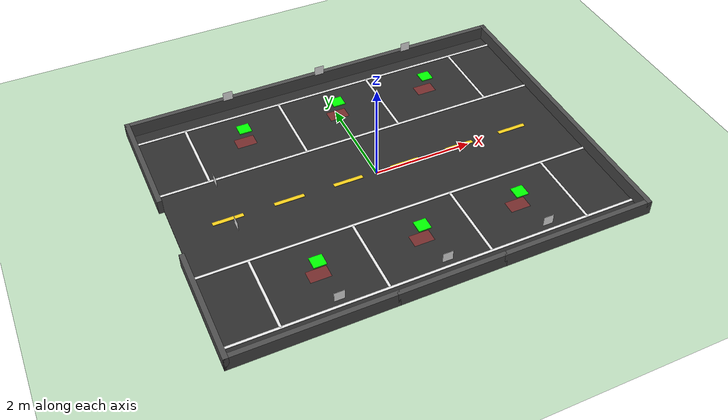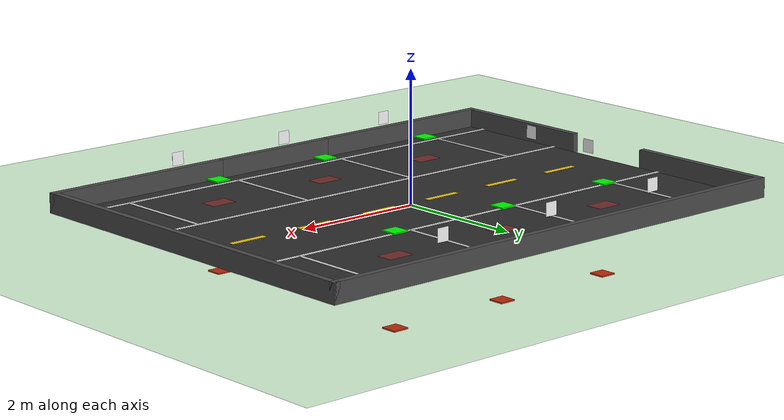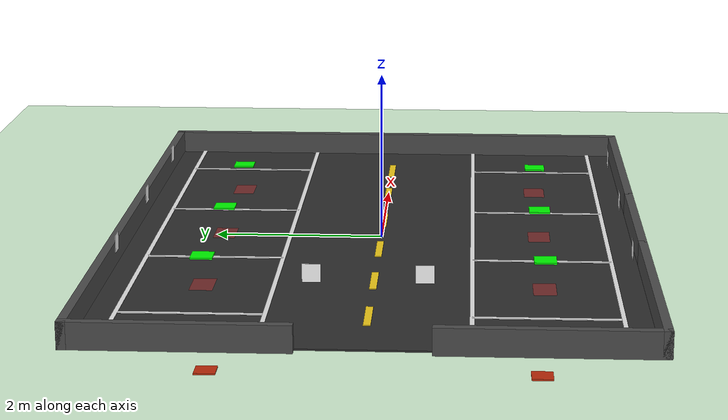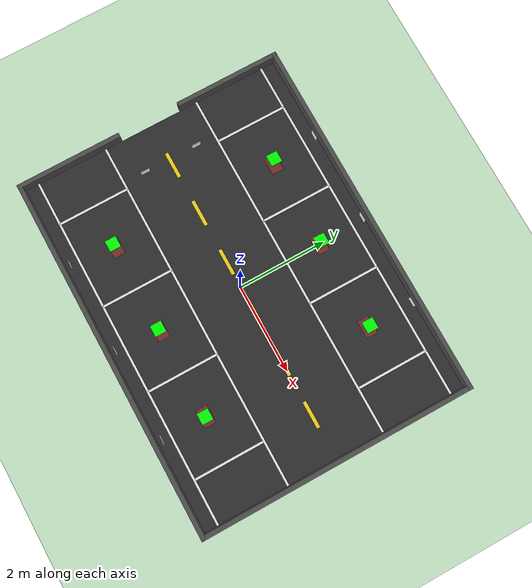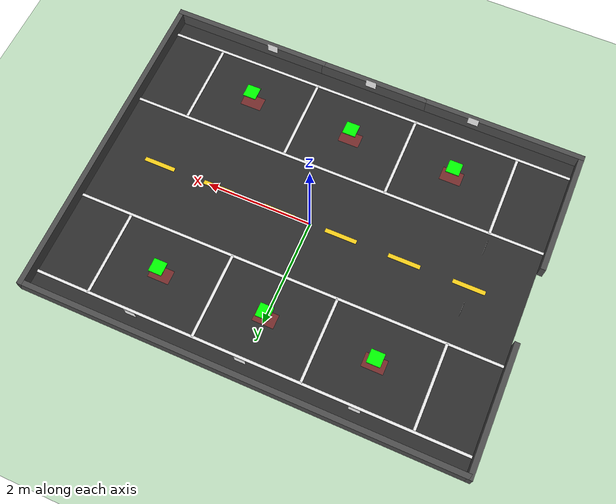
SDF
<sdf version="1.7">
 <world name="limo_parking_lot">
  <gravity>0 0 -9.8</gravity>
  <plugin filename="ignition-gazebo-physics-system" name="gz::sim::systems::Physics"/>
  <plugin filename="ignition-gazebo-user-commands-system" name="gz::sim::systems::UserCommands"/>
  <plugin filename="ignition-gazebo-sensors-system" name="gz::sim::systems::Sensors">
   <render_engine>ogre2</render_engine>
  </plugin>
  <plugin filename="ignition-gazebo-contact-system" name="gz::sim::systems::Contact"/>
  <plugin filename="ignition-gazebo-scene-broadcaster-system" name="gz::sim::systems::SceneBroadcaster"/>
  <scene><ambient>0.2 0.2 0.2 1</ambient><background>0.2 0.25 0.3 1</background><shadows>true</shadows></scene>
  <light name="sun" type="directional">
   <pose>0 0 10 0 0 0</pose>
   <diffuse>0.4 0.4 0.4 1</diffuse>
   <specular>0.1 0.1 0.1 1</specular>
   <direction>-0.5 0.5 -1</direction>
  </light>
  <model name="ground">
   <static>true</static>
   <link name="ground_link">
    <collision name="ground_collision">
     <geometry><plane><normal>0 0 1</normal><size>100 100</size></plane></geometry>
    </collision>
    <visual name="ground_visual">
     <geometry><plane><normal>0 0 1</normal><size>100 100</size></plane></geometry>
     <material><ambient>0.2 0.55 0.2 1</ambient><diffuse>0.2 0.6 0.2 1</diffuse></material>
    </visual>
   </link>
  </model>
  <model name="parking_lot">
   <static>true</static>
   <link name="parking_link">
    <pose>0 0 0.01 0 0 0</pose>
    <visual name="asphalt">
     <geometry><box><size>8.0 6.0 0.02</size></box></geometry>
     <material><ambient>0.15 0.15 0.15 1</ambient><diffuse>0.18 0.18 0.18 1</diffuse></material>
    </visual>
    <collision name="asphalt_collision"><geometry><box><size>8.0 6.0 0.02</size></box></geometry></collision>
    <visual name="line_top_front">
     <pose>0 1.1 0.02 0 0 0</pose>
     <geometry><box><size>8.0 0.05 0.01</size></box></geometry>
     <material><ambient>0.9 0.9 0.9 1</ambient><diffuse>0.9 0.9 0.9 1</diffuse></material>
    </visual>
    <visual name="line_top_back">
     <pose>0 2.7 0.02 0 0 0</pose>
     <geometry><box><size>8.0 0.05 0.01</size></box></geometry>
     <material><ambient>0.9 0.9 0.9 1</ambient><diffuse>0.9 0.9 0.9 1</diffuse></material>
    </visual>
    <visual name="line_bottom_front">
     <pose>0 -1.1 0.02 0 0 0</pose>
     <geometry><box><size>8.0 0.05 0.01</size></box></geometry>
     <material><ambient>0.9 0.9 0.9 1</ambient><diffuse>0.9 0.9 0.9 1</diffuse></material>
    </visual>
    <visual name="line_bottom_back">
     <pose>0 -2.7 0.02 0 0 0</pose>
     <geometry><box><size>8.0 0.05 0.01</size></box></geometry>
     <material><ambient>0.9 0.9 0.9 1</ambient><diffuse>0.9 0.9 0.9 1</diffuse></material>
    </visual>
    <visual name="line_top_1">
     <pose>-3.0 1.9 0.02 0 0 0</pose>
     <geometry><box><size>0.05 1.6 0.01</size></box></geometry>
     <material><ambient>0.9 0.9 0.9 1</ambient><diffuse>0.9 0.9 0.9 1</diffuse></material>
    </visual>
    <visual name="line_top_2">
     <pose>-1.0 1.9 0.02 0 0 0</pose>
     <geometry><box><size>0.05 1.6 0.01</size></box></geometry>
     <material><ambient>0.9 0.9 0.9 1</ambient><diffuse>0.9 0.9 0.9 1</diffuse></material>
    </visual>
    <visual name="line_top_3">
     <pose>1.0 1.9 0.02 0 0 0</pose>
     <geometry><box><size>0.05 1.6 0.01</size></box></geometry>
     <material><ambient>0.9 0.9 0.9 1</ambient><diffuse>0.9 0.9 0.9 1</diffuse></material>
    </visual>
    <visual name="line_top_4">
     <pose>3.0 1.9 0.02 0 0 0</pose>
     <geometry><box><size>0.05 1.6 0.01</size></box></geometry>
     <material><ambient>0.9 0.9 0.9 1</ambient><diffuse>0.9 0.9 0.9 1</diffuse></material>
    </visual>
    <visual name="line_bottom_1">
     <pose>-3.0 -1.9 0.02 0 0 0</pose>
     <geometry><box><size>0.05 1.6 0.01</size></box></geometry>
     <material><ambient>0.9 0.9 0.9 1</ambient><diffuse>0.9 0.9 0.9 1</diffuse></material>
    </visual>
    <visual name="line_bottom_2">
     <pose>-1.0 -1.9 0.02 0 0 0</pose>
     <geometry><box><size>0.05 1.6 0.01</size></box></geometry>
     <material><ambient>0.9 0.9 0.9 1</ambient><diffuse>0.9 0.9 0.9 1</diffuse></material>
    </visual>
    <visual name="line_bottom_3">
     <pose>1.0 -1.9 0.02 0 0 0</pose>
     <geometry><box><size>0.05 1.6 0.01</size></box></geometry>
     <material><ambient>0.9 0.9 0.9 1</ambient><diffuse>0.9 0.9 0.9 1</diffuse></material>
    </visual>
    <visual name="line_bottom_4">
     <pose>3.0 -1.9 0.02 0 0 0</pose>
     <geometry><box><size>0.05 1.6 0.01</size></box></geometry>
     <material><ambient>0.9 0.9 0.9 1</ambient><diffuse>0.9 0.9 0.9 1</diffuse></material>
    </visual>
    <visual name="center_dash_1">
     <pose>-3.0 0.0 0.02 0 0 0</pose>
     <geometry><box><size>0.6 0.08 0.01</size></box></geometry>
     <material><ambient>0.95 0.8 0.1 1</ambient><diffuse>0.95 0.8 0.1 1</diffuse></material>
    </visual>
    <visual name="center_dash_2">
     <pose>-1.8 0.0 0.02 0 0 0</pose>
     <geometry><box><size>0.6 0.08 0.01</size></box></geometry>
     <material><ambient>0.95 0.8 0.1 1</ambient><diffuse>0.95 0.8 0.1 1</diffuse></material>
    </visual>
    <visual name="center_dash_3">
     <pose>-0.6 0.0 0.02 0 0 0</pose>
     <geometry><box><size>0.6 0.08 0.01</size></box></geometry>
     <material><ambient>0.95 0.8 0.1 1</ambient><diffuse>0.95 0.8 0.1 1</diffuse></material>
    </visual>
    <visual name="center_dash_4">
     <pose>0.6 0.0 0.02 0 0 0</pose>
     <geometry><box><size>0.6 0.08 0.01</size></box></geometry>
     <material><ambient>0.95 0.8 0.1 1</ambient><diffuse>0.95 0.8 0.1 1</diffuse></material>
    </visual>
    <visual name="center_dash_5">
     <pose>1.8 0.0 0.02 0 0 0</pose>
     <geometry><box><size>0.6 0.08 0.01</size></box></geometry>
     <material><ambient>0.95 0.8 0.1 1</ambient><diffuse>0.95 0.8 0.1 1</diffuse></material>
    </visual>
    <visual name="center_dash_6">
     <pose>3.0 0.0 0.02 0 0 0</pose>
     <geometry><box><size>0.6 0.08 0.01</size></box></geometry>
     <material><ambient>0.95 0.8 0.1 1</ambient><diffuse>0.95 0.8 0.1 1</diffuse></material>
    </visual>
   </link>
  </model>
  <include>
   <uri>model://spot_indicator_green</uri>
   <name>spot_green_01</name>
   <pose>-2.0 1.9 0.36 0 0 0</pose>
  </include>
  <include>
   <uri>model://spot_indicator_red</uri>
   <name>spot_red_01</name>
   <pose>-2.0 1.9 -1.0 0 0 0</pose>
  </include>
  <include>
   <uri>model://spot_indicator_green</uri>
   <name>spot_green_02</name>
   <pose>0.0 1.9 0.36 0 0 0</pose>
  </include>
  <include>
   <uri>model://spot_indicator_red</uri>
   <name>spot_red_02</name>
   <pose>0.0 1.9 -1.0 0 0 0</pose>
  </include>
  <include>
   <uri>model://spot_indicator_green</uri>
   <name>spot_green_03</name>
   <pose>2.0 1.9 0.36 0 0 0</pose>
  </include>
  <include>
   <uri>model://spot_indicator_red</uri>
   <name>spot_red_03</name>
   <pose>2.0 1.9 -1.0 0 0 0</pose>
  </include>
  <include>
   <uri>model://spot_indicator_green</uri>
   <name>spot_green_04</name>
   <pose>-2.0 -1.9 0.36 0 0 0</pose>
  </include>
  <include>
   <uri>model://spot_indicator_red</uri>
   <name>spot_red_04</name>
   <pose>-2.0 -1.9 -1.0 0 0 0</pose>
  </include>
  <include>
   <uri>model://spot_indicator_green</uri>
   <name>spot_green_05</name>
   <pose>0.0 -1.9 0.36 0 0 0</pose>
  </include>
  <include>
   <uri>model://spot_indicator_red</uri>
   <name>spot_red_05</name>
   <pose>0.0 -1.9 -1.0 0 0 0</pose>
  </include>
  <include>
   <uri>model://spot_indicator_green</uri>
   <name>spot_green_06</name>
   <pose>2.0 -1.9 0.36 0 0 0</pose>
  </include>
  <include>
   <uri>model://spot_indicator_red</uri>
   <name>spot_red_06</name>
   <pose>2.0 -1.9 -1.0 0 0 0</pose>
  </include>
  <model name="parking_walls">
   <static>true</static>
   <link name="walls_link">
    <collision name="wall_top_collision">
     <pose>0 3.05 0.15 0 0 0</pose>
     <geometry><box><size>8.2 0.1 0.3</size></box></geometry>
    </collision>
    <visual name="wall_top_visual">
     <pose>0 3.05 0.15 0 0 0</pose>
     <geometry><box><size>8.2 0.1 0.3</size></box></geometry>
     <material><ambient>0.3 0.3 0.3 1</ambient><diffuse>0.3 0.3 0.3 1</diffuse></material>
    </visual>
    <collision name="wall_left_top_collision">
     <pose>-4.05 1.9 0.15 0 0 0</pose>
     <geometry><box><size>0.1 2.4 0.3</size></box></geometry>
    </collision>
    <visual name="wall_left_top_visual">
     <pose>-4.05 1.9 0.15 0 0 0</pose>
     <geometry><box><size>0.1 2.4 0.3</size></box></geometry>
     <material><ambient>0.3 0.3 0.3 1</ambient><diffuse>0.3 0.3 0.3 1</diffuse></material>
    </visual>
    <collision name="wall_left_bottom_collision">
     <pose>-4.05 -1.9 0.15 0 0 0</pose>
     <geometry><box><size>0.1 2.4 0.3</size></box></geometry>
    </collision>
    <visual name="wall_left_bottom_visual">
     <pose>-4.05 -1.9 0.15 0 0 0</pose>
     <geometry><box><size>0.1 2.4 0.3</size></box></geometry>
     <material><ambient>0.3 0.3 0.3 1</ambient><diffuse>0.3 0.3 0.3 1</diffuse></material>
    </visual>
    <collision name="wall_right_collision">
     <pose>4.05 0 0.15 0 0 0</pose>
     <geometry><box><size>0.1 6.2 0.3</size></box></geometry>
    </collision>
    <visual name="wall_right_visual">
     <pose>4.05 0 0.15 0 0 0</pose>
     <geometry><box><size>0.1 6.2 0.3</size></box></geometry>
     <material><ambient>0.3 0.3 0.3 1</ambient><diffuse>0.3 0.3 0.3 1</diffuse></material>
    </visual>
    <collision name="wall_bottom_left_collision">
     <pose>-2.55 -3.05 0.15 0 0 0</pose>
     <geometry><box><size>3.1 0.1 0.3</size></box></geometry>
    </collision>
    <visual name="wall_bottom_left_visual">
     <pose>-2.55 -3.05 0.15 0 0 0</pose>
     <geometry><box><size>3.1 0.1 0.3</size></box></geometry>
     <material><ambient>0.3 0.3 0.3 1</ambient><diffuse>0.3 0.3 0.3 1</diffuse></material>
    </visual>
    <collision name="wall_bottom_right_collision">
     <pose>2.55 -3.05 0.15 0 0 0</pose>
     <geometry><box><size>3.1 0.1 0.3</size></box></geometry>
    </collision>
    <visual name="wall_bottom_right_visual">
     <pose>2.55 -3.05 0.15 0 0 0</pose>
     <geometry><box><size>3.1 0.1 0.3</size></box></geometry>
     <material><ambient>0.3 0.3 0.3 1</ambient><diffuse>0.3 0.3 0.3 1</diffuse></material>
    </visual>
    <collision name="wall_bottom_mid_collision">
     <pose>0.0 -3.05 0.15 0 0 0</pose>
     <geometry><box><size>2.1 0.1 0.3</size></box></geometry>
    </collision>
    <visual name="wall_bottom_mid_visual">
     <pose>0.0 -3.05 0.15 0 0 0</pose>
     <geometry><box><size>2.1 0.1 0.3</size></box></geometry>
     <material><ambient>0.3 0.3 0.3 1</ambient><diffuse>0.3 0.3 0.3 1</diffuse></material>
    </visual>
   </link>
  </model>
  <include>
   <uri>model://apriltag_00000</uri>
   <name>tag36h11_00</name>
   <pose>-2.0 2.85 0.50 1.5708 0 0</pose>
  </include>
  <include>
   <uri>model://apriltag_00001</uri>
   <name>tag36h11_01</name>
   <pose>0.0 2.85 0.50 1.5708 0 0</pose>
  </include>
  <include>
   <uri>model://apriltag_00002</uri>
   <name>tag36h11_02</name>
   <pose>2.0 2.85 0.50 1.5708 0 0</pose>
  </include>
  <include>
   <uri>model://apriltag_00003</uri>
   <name>tag36h11_03</name>
   <pose>-2.0 -2.85 0.50 1.5708 0 3.1416</pose>
  </include>
  <include>
   <uri>model://apriltag_00004</uri>
   <name>tag36h11_04</name>
   <pose>0.0 -2.85 0.50 1.5708 0 3.1416</pose>
  </include>
  <include>
   <uri>model://apriltag_00005</uri>
   <name>tag36h11_05</name>
   <pose>2.0 -2.85 0.50 1.5708 0 3.1416</pose>
  </include>
  <model name="parking_sensors">
   <static>false</static>
   <link name="spot_01_zone">
    <pose>-2.0 1.9 0.01 0 0 0</pose>
    <gravity>false</gravity>
    <velocity_decay><linear>20.0</linear><angular>20.0</angular></velocity_decay>
    <inertial>
     <mass>5.0</mass>
     <inertia><ixx>0.02</ixx><iyy>0.02</iyy><izz>0.02</izz><ixy>0</ixy><ixz>0</ixz><iyz>0</iyz></inertia>
    </inertial>
    <collision name="spot_01_collision"><geometry><box><size>0.40 0.26 0.03</size></box></geometry></collision>
    <visual name="spot_01_visual">
     <geometry><box><size>0.40 0.26 0.03</size></box></geometry>
     <material><ambient>1.0 0.2 0.2 0.35</ambient><diffuse>1.0 0.2 0.2 0.35</diffuse></material>
    </visual>
    <sensor name="spot_01_sensor" type="contact">
     <topic>/parking/spot_01/contact</topic>
     <always_on>true</always_on>
     <update_rate>10</update_rate>
     <contact><collision>spot_01_collision</collision></contact>
    </sensor>
   </link>
   <link name="spot_02_zone">
    <pose>0.0 1.9 0.01 0 0 0</pose>
    <gravity>false</gravity>
    <velocity_decay><linear>20.0</linear><angular>20.0</angular></velocity_decay>
    <inertial>
     <mass>5.0</mass>
     <inertia><ixx>0.02</ixx><iyy>0.02</iyy><izz>0.02</izz><ixy>0</ixy><ixz>0</ixz><iyz>0</iyz></inertia>
    </inertial>
    <collision name="spot_02_collision"><geometry><box><size>0.40 0.26 0.03</size></box></geometry></collision>
    <visual name="spot_02_visual">
     <geometry><box><size>0.40 0.26 0.03</size></box></geometry>
     <material><ambient>1.0 0.2 0.2 0.35</ambient><diffuse>1.0 0.2 0.2 0.35</diffuse></material>
    </visual>
    <sensor name="spot_02_sensor" type="contact">
     <topic>/parking/spot_02/contact</topic>
     <always_on>true</always_on>
     <update_rate>10</update_rate>
     <contact><collision>spot_02_collision</collision></contact>
    </sensor>
   </link>
   <link name="spot_03_zone">
    <pose>2.0 1.9 0.01 0 0 0</pose>
    <gravity>false</gravity>
    <velocity_decay><linear>20.0</linear><angular>20.0</angular></velocity_decay>
    <inertial>
     <mass>5.0</mass>
     <inertia><ixx>0.02</ixx><iyy>0.02</iyy><izz>0.02</izz><ixy>0</ixy><ixz>0</ixz><iyz>0</iyz></inertia>
    </inertial>
    <collision name="spot_03_collision"><geometry><box><size>0.40 0.26 0.03</size></box></geometry></collision>
    <visual name="spot_03_visual">
     <geometry><box><size>0.40 0.26 0.03</size></box></geometry>
     <material><ambient>1.0 0.2 0.2 0.35</ambient><diffuse>1.0 0.2 0.2 0.35</diffuse></material>
    </visual>
    <sensor name="spot_03_sensor" type="contact">
     <topic>/parking/spot_03/contact</topic>
     <always_on>true</always_on>
     <update_rate>10</update_rate>
     <contact><collision>spot_03_collision</collision></contact>
    </sensor>
   </link>
   <link name="spot_04_zone">
    <pose>-2.0 -1.9 0.01 0 0 0</pose>
    <gravity>false</gravity>
    <velocity_decay><linear>20.0</linear><angular>20.0</angular></velocity_decay>
    <inertial>
     <mass>5.0</mass>
     <inertia><ixx>0.02</ixx><iyy>0.02</iyy><izz>0.02</izz><ixy>0</ixy><ixz>0</ixz><iyz>0</iyz></inertia>
    </inertial>
    <collision name="spot_04_collision"><geometry><box><size>0.40 0.26 0.03</size></box></geometry></collision>
    <visual name="spot_04_visual">
     <geometry><box><size>0.40 0.26 0.03</size></box></geometry>
     <material><ambient>1.0 0.2 0.2 0.35</ambient><diffuse>1.0 0.2 0.2 0.35</diffuse></material>
    </visual>
    <sensor name="spot_04_sensor" type="contact">
     <topic>/parking/spot_04/contact</topic>
     <always_on>true</always_on>
     <update_rate>10</update_rate>
     <contact><collision>spot_04_collision</collision></contact>
    </sensor>
   </link>
   <link name="spot_05_zone">
    <pose>0.0 -1.9 0.01 0 0 0</pose>
    <gravity>false</gravity>
    <velocity_decay><linear>20.0</linear><angular>20.0</angular></velocity_decay>
    <inertial>
     <mass>5.0</mass>
     <inertia><ixx>0.02</ixx><iyy>0.02</iyy><izz>0.02</izz><ixy>0</ixy><ixz>0</ixz><iyz>0</iyz></inertia>
    </inertial>
    <collision name="spot_05_collision"><geometry><box><size>0.40 0.26 0.03</size></box></geometry></collision>
    <visual name="spot_05_visual">
     <geometry><box><size>0.40 0.26 0.03</size></box></geometry>
     <material><ambient>1.0 0.2 0.2 0.35</ambient><diffuse>1.0 0.2 0.2 0.35</diffuse></material>
    </visual>
    <sensor name="spot_05_sensor" type="contact">
     <topic>/parking/spot_05/contact</topic>
     <always_on>true</always_on>
     <update_rate>10</update_rate>
     <contact><collision>spot_05_collision</collision></contact>
    </sensor>
   </link>
   <link name="spot_06_zone">
    <pose>2.0 -1.9 0.01 0 0 0</pose>
    <gravity>false</gravity>
    <velocity_decay><linear>20.0</linear><angular>20.0</angular></velocity_decay>
    <inertial>
     <mass>5.0</mass>
     <inertia><ixx>0.02</ixx><iyy>0.02</iyy><izz>0.02</izz><ixy>0</ixy><ixz>0</ixz><iyz>0</iyz></inertia>
    </inertial>
    <collision name="spot_06_collision"><geometry><box><size>0.40 0.26 0.03</size></box></geometry></collision>
    <visual name="spot_06_visual">
     <geometry><box><size>0.40 0.26 0.03</size></box></geometry>
     <material><ambient>1.0 0.2 0.2 0.35</ambient><diffuse>1.0 0.2 0.2 0.35</diffuse></material>
    </visual>
    <sensor name="spot_06_sensor" type="contact">
     <topic>/parking/spot_06/contact</topic>
     <always_on>true</always_on>
     <update_rate>10</update_rate>
     <contact><collision>spot_06_collision</collision></contact>
    </sensor>
   </link>
   <joint name="spot_01_anchor" type="fixed"><parent>world</parent><child>spot_01_zone</child></joint>
   <joint name="spot_02_anchor" type="fixed"><parent>world</parent><child>spot_02_zone</child></joint>
   <joint name="spot_03_anchor" type="fixed"><parent>world</parent><child>spot_03_zone</child></joint>
   <joint name="spot_04_anchor" type="fixed"><parent>world</parent><child>spot_04_zone</child></joint>
   <joint name="spot_05_anchor" type="fixed"><parent>world</parent><child>spot_05_zone</child></joint>
   <joint name="spot_06_anchor" type="fixed"><parent>world</parent><child>spot_06_zone</child></joint>
  </model>
  <include>
   <uri>model://apriltag_00006</uri>
   <name>tag36h11_06</name>
   <pose>-3.0 0.6 0.50 1.5708 0 -1.5708</pose>
  </include>
  <include>
   <uri>model://apriltag_00007</uri>
   <name>tag36h11_07</name>
   <pose>-3.0 -0.6 0.50 1.5708 0 -1.5708</pose>
  </include>
 </world>
</sdf>

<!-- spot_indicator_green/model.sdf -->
<sdf version="1.7">
  <model name="spot_indicator_green">
    <static>true</static>
    <link name="indicator_link">
      <visual name="indicator_visual">
        <geometry><box><size>0.25 0.25 0.02</size></box></geometry>
        <material>
          <ambient>0.0 1.0 0.0 1</ambient>
          <diffuse>0.0 1.0 0.0 1</diffuse>
          <emissive>0.0 1.0 0.0 1</emissive>
        </material>
      </visual>
    </link>
  </model>
</sdf>

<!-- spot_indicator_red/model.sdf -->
<sdf version="1.7">
  <model name="spot_indicator_red">
    <static>true</static>
    <link name="indicator_link">
      <visual name="indicator_visual">
        <geometry><box><size>0.25 0.25 0.02</size></box></geometry>
        <material>
          <ambient>1.0 0.0 0.0 1</ambient>
          <diffuse>1.0 0.0 0.0 1</diffuse>
          <emissive>1.0 0.0 0.0 1</emissive>
        </material>
      </visual>
    </link>
  </model>
</sdf>

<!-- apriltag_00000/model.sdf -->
<sdf version="1.7">
  <model name="apriltag_00000">
    <static>true</static>
    <link name="tag_link">
      <pose>0 0 0 0 0 0</pose>
      <visual name="tag_visual">
        <geometry>
          <box>
            <size>0.20 0.20 0.002</size>
          </box>
        </geometry>
                          <material>
        <ambient>1 1 1 1</ambient>
        <diffuse>1 1 1 1</diffuse>
        <specular>0 0 0 1</specular>
        <emissive>1 1 1 1</emissive>
        <pbr>
          <metal>
            <albedo_map>model://apriltag_00000/materials/textures/tag36_11_00000.png</albedo_map>
            <emissive_map>model://apriltag_00000/materials/textures/tag36_11_00000.png</emissive_map>
            <metalness>0.0</metalness>
            <roughness>1.0</roughness>
          </metal>
        </pbr>
      </material>
      </visual>
      <collision name="tag_collision">
        <geometry>
          <box>
            <size>0.20 0.20 0.002</size>
          </box>
        </geometry>
      </collision>
    </link>
  </model>
</sdf>

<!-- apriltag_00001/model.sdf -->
<sdf version="1.7">
  <model name="apriltag_00001">
    <static>true</static>
    <link name="tag_link">
      <pose>0 0 0 0 0 0</pose>
      <visual name="tag_visual">
        <geometry>
          <box>
            <size>0.20 0.20 0.002</size>
          </box>
        </geometry>
                          <material>
        <ambient>1 1 1 1</ambient>
        <diffuse>1 1 1 1</diffuse>
        <specular>0 0 0 1</specular>
        <emissive>1 1 1 1</emissive>
        <pbr>
          <metal>
            <albedo_map>model://apriltag_00001/materials/textures/tag36_11_00001.png</albedo_map>
            <emissive_map>model://apriltag_00001/materials/textures/tag36_11_00001.png</emissive_map>
            <metalness>0.0</metalness>
            <roughness>1.0</roughness>
          </metal>
        </pbr>
      </material>
      </visual>
      <collision name="tag_collision">
        <geometry>
          <box>
            <size>0.20 0.20 0.002</size>
          </box>
        </geometry>
      </collision>
    </link>
  </model>
</sdf>

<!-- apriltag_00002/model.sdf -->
<sdf version="1.7">
  <model name="apriltag_00002">
    <static>true</static>
    <link name="tag_link">
      <pose>0 0 0 0 0 0</pose>
      <visual name="tag_visual">
        <geometry>
          <box>
            <size>0.20 0.20 0.002</size>
          </box>
        </geometry>
                          <material>
        <ambient>1 1 1 1</ambient>
        <diffuse>1 1 1 1</diffuse>
        <specular>0 0 0 1</specular>
        <emissive>1 1 1 1</emissive>
        <pbr>
          <metal>
            <albedo_map>model://apriltag_00002/materials/textures/tag36_11_00002.png</albedo_map>
            <emissive_map>model://apriltag_00002/materials/textures/tag36_11_00002.png</emissive_map>
            <metalness>0.0</metalness>
            <roughness>1.0</roughness>
          </metal>
        </pbr>
      </material>
      </visual>
      <collision name="tag_collision">
        <geometry>
          <box>
            <size>0.20 0.20 0.002</size>
          </box>
        </geometry>
      </collision>
    </link>
  </model>
</sdf>

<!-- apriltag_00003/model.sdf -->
<sdf version="1.7">
  <model name="apriltag_00003">
    <static>true</static>
    <link name="tag_link">
      <pose>0 0 0 0 0 0</pose>
      <visual name="tag_visual">
        <geometry>
          <box>
            <size>0.20 0.20 0.002</size>
          </box>
        </geometry>
                          <material>
        <ambient>1 1 1 1</ambient>
        <diffuse>1 1 1 1</diffuse>
        <specular>0 0 0 1</specular>
        <emissive>1 1 1 1</emissive>
        <pbr>
          <metal>
            <albedo_map>model://apriltag_00003/materials/textures/tag36_11_00003.png</albedo_map>
            <emissive_map>model://apriltag_00003/materials/textures/tag36_11_00003.png</emissive_map>
            <metalness>0.0</metalness>
            <roughness>1.0</roughness>
          </metal>
        </pbr>
      </material>
      </visual>
      <collision name="tag_collision">
        <geometry>
          <box>
            <size>0.20 0.20 0.002</size>
          </box>
        </geometry>
      </collision>
    </link>
  </model>
</sdf>

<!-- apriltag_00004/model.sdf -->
<sdf version="1.7">
  <model name="apriltag_00004">
    <static>true</static>
    <link name="tag_link">
      <pose>0 0 0 0 0 0</pose>
      <visual name="tag_visual">
        <geometry>
          <box>
            <size>0.20 0.20 0.002</size>
          </box>
        </geometry>
                          <material>
        <ambient>1 1 1 1</ambient>
        <diffuse>1 1 1 1</diffuse>
        <specular>0 0 0 1</specular>
        <emissive>1 1 1 1</emissive>
        <pbr>
          <metal>
            <albedo_map>model://apriltag_00004/materials/textures/tag36_11_00004.png</albedo_map>
            <emissive_map>model://apriltag_00004/materials/textures/tag36_11_00004.png</emissive_map>
            <metalness>0.0</metalness>
            <roughness>1.0</roughness>
          </metal>
        </pbr>
      </material>
      </visual>
      <collision name="tag_collision">
        <geometry>
          <box>
            <size>0.20 0.20 0.002</size>
          </box>
        </geometry>
      </collision>
    </link>
  </model>
</sdf>

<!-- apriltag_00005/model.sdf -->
<sdf version="1.7">
  <model name="apriltag_00005">
    <static>true</static>
    <link name="tag_link">
      <pose>0 0 0 0 0 0</pose>
      <visual name="tag_visual">
        <geometry>
          <box>
            <size>0.20 0.20 0.002</size>
          </box>
        </geometry>
                          <material>
        <ambient>1 1 1 1</ambient>
        <diffuse>1 1 1 1</diffuse>
        <specular>0 0 0 1</specular>
        <emissive>1 1 1 1</emissive>
        <pbr>
          <metal>
            <albedo_map>model://apriltag_00005/materials/textures/tag36_11_00005.png</albedo_map>
            <emissive_map>model://apriltag_00005/materials/textures/tag36_11_00005.png</emissive_map>
            <metalness>0.0</metalness>
            <roughness>1.0</roughness>
          </metal>
        </pbr>
      </material>
      </visual>
      <collision name="tag_collision">
        <geometry>
          <box>
            <size>0.20 0.20 0.002</size>
          </box>
        </geometry>
      </collision>
    </link>
  </model>
</sdf>

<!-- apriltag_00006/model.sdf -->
<sdf version="1.7">
  <model name="apriltag_00006">
    <static>true</static>
    <link name="tag_link">
      <pose>0 0 0 0 0 0</pose>
      <visual name="tag_visual">
        <geometry>
          <box>
            <size>0.20 0.20 0.002</size>
          </box>
        </geometry>
                          <material>
        <ambient>1 1 1 1</ambient>
        <diffuse>1 1 1 1</diffuse>
        <specular>0 0 0 1</specular>
        <emissive>1 1 1 1</emissive>
        <pbr>
          <metal>
            <albedo_map>model://apriltag_00006/materials/textures/tag36_11_00006.png</albedo_map>
            <emissive_map>model://apriltag_00006/materials/textures/tag36_11_00006.png</emissive_map>
            <metalness>0.0</metalness>
            <roughness>1.0</roughness>
          </metal>
        </pbr>
      </material>
      </visual>
      <collision name="tag_collision">
        <geometry>
          <box>
            <size>0.20 0.20 0.002</size>
          </box>
        </geometry>
      </collision>
    </link>
  </model>
</sdf>

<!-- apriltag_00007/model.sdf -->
<sdf version="1.7">
  <model name="apriltag_00007">
    <static>true</static>
    <link name="tag_link">
      <pose>0 0 0 0 0 0</pose>
      <visual name="tag_visual">
        <geometry>
          <box>
            <size>0.20 0.20 0.002</size>
          </box>
        </geometry>
                          <material>
        <ambient>1 1 1 1</ambient>
        <diffuse>1 1 1 1</diffuse>
        <specular>0 0 0 1</specular>
        <emissive>1 1 1 1</emissive>
        <pbr>
          <metal>
            <albedo_map>model://apriltag_00007/materials/textures/tag36_11_00007.png</albedo_map>
            <emissive_map>model://apriltag_00007/materials/textures/tag36_11_00007.png</emissive_map>
            <metalness>0.0</metalness>
            <roughness>1.0</roughness>
          </metal>
        </pbr>
      </material>
      </visual>
      <collision name="tag_collision">
        <geometry>
          <box>
            <size>0.20 0.20 0.002</size>
          </box>
        </geometry>
      </collision>
    </link>
  </model>
</sdf>
